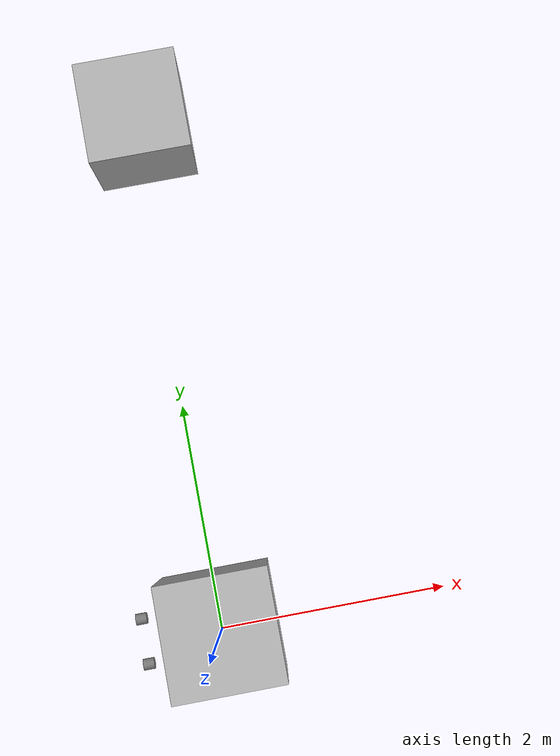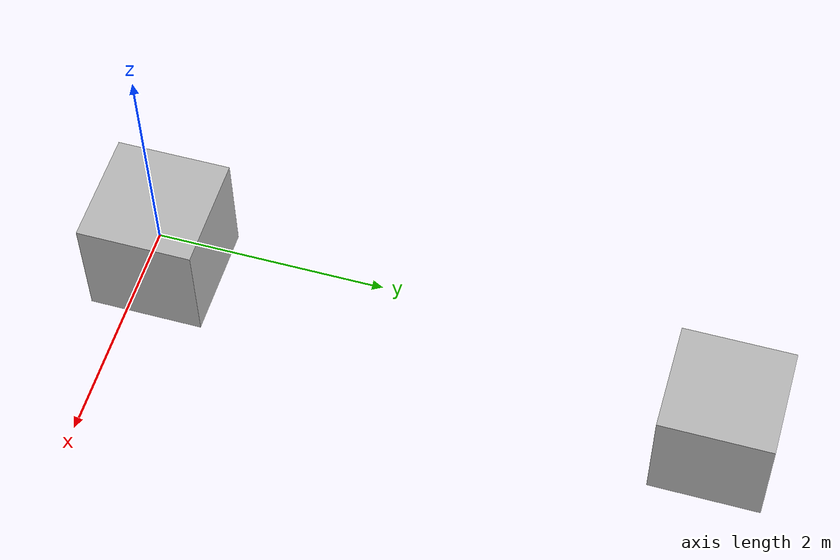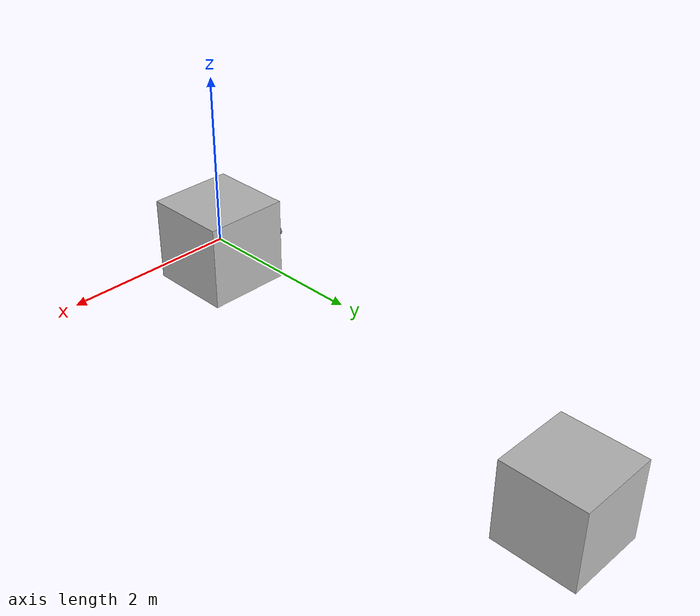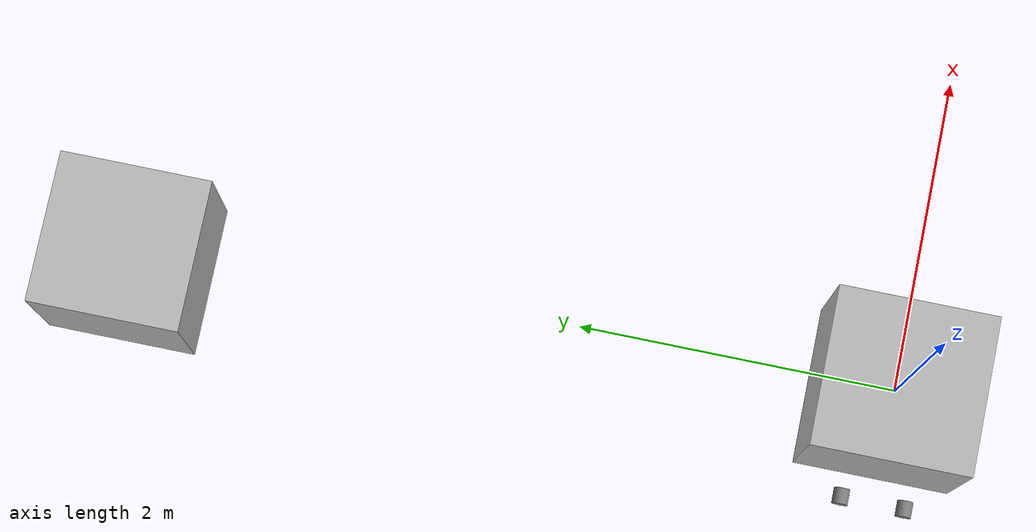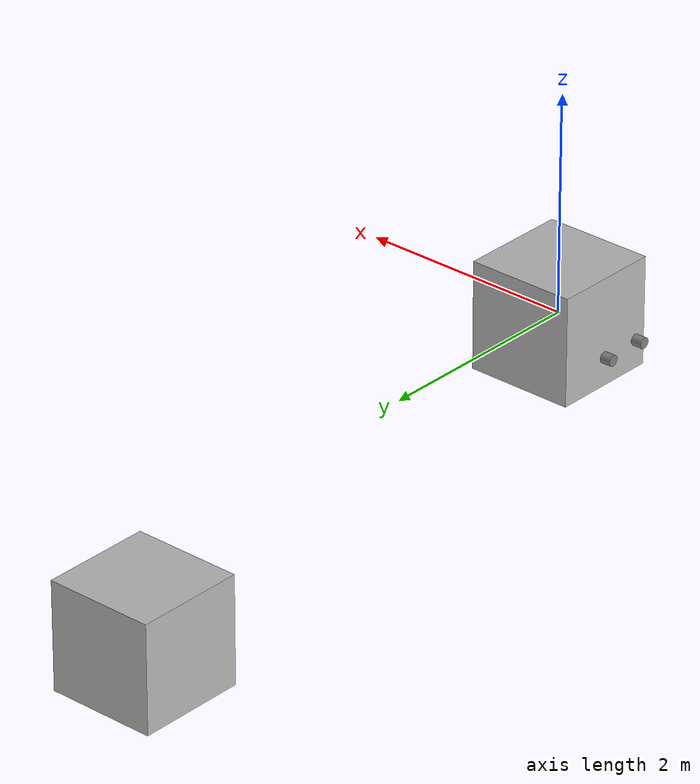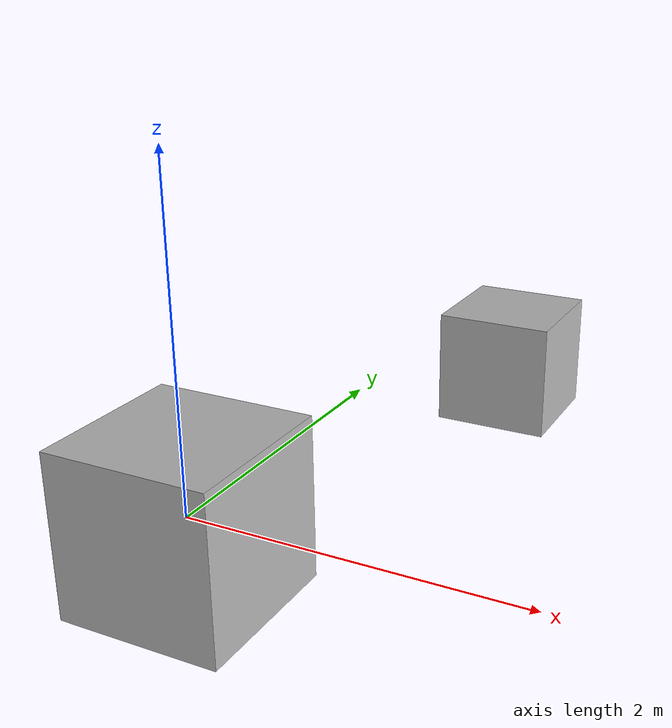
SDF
<sdf version="1.6">
  <world name="buoyant_tethys">
    <scene>
      <ambient>0.0 1.0 1.0</ambient>
      <background>0.0 0.7 0.8</background>
    </scene>

    <physics name="1ms" type="ode">
      <max_step_size>0.001</max_step_size>
      <real_time_factor>1.0</real_time_factor>
    </physics>

    <!-- Add plugins for the world -->
    <plugin filename="gz-sim-physics-system" name="gz::sim::systems::Physics"></plugin>
    <plugin filename="gz-sim-user-commands-system" name="gz::sim::systems::UserCommands"></plugin>
    <plugin filename="gz-sim-scene-broadcaster-system" name="gz::sim::systems::SceneBroadcaster"></plugin>
    <plugin filename="gz-sim-contact-system" name="gz::sim::systems::Contact"></plugin>
    <plugin filename="gz-sim-buoyancy-system" name="gz::sim::systems::Buoyancy">
      <uniform_fluid_density>1000</uniform_fluid_density>
    </plugin>

    <light type="directional" name="sun">
      <cast_shadows>true</cast_shadows>
      <pose>0 0 10 0 0 0</pose>
      <diffuse>1 1 1 1</diffuse>
      <specular>0.5 0.5 0.5 1</specular>
      <attenuation>
        <range>1000</range>
        <constant>0.9</constant>
        <linear>0.01</linear>
        <quadratic>0.001</quadratic>
      </attenuation>
      <direction>-0.5 0.1 -0.9</direction>
    </light>

    <!-- Buoyant box model -->
    <model name="buoyant_box">
      <pose>0 0 0 0 0 0</pose>
      <link name="body">
        <inertial>
          <mass>1000</mass>
          <inertia>
            <ixx>133.3333</ixx>
            <iyy>133.3333</iyy>
            <izz>133.3333</izz>
          </inertia>
        </inertial>
        <visual name="body_visual">
          <geometry>
            <box>
              <size>1 1 1</size>
            </box>
          </geometry>
        </visual>
        <collision name="body_collision">
          <geometry>
            <box>
              <size>1 1 1</size>
            </box>
          </geometry>
        </collision>
      </link>

      <!-- Left thruster -->
      <link name="left_thruster">
        <pose>-0.7 -0.2 -0.1 0 1.57 0</pose>
        <inertial>
          <mass>0</mass>
          <inertia>
            <ixx>0.1</ixx>
            <iyy>0.1</iyy>
            <izz>0.1</izz>
          </inertia>
        </inertial>
        <visual name="left_thruster_visual">
          <geometry>
            <cylinder>
              <radius>0.05</radius>
              <length>0.1</length>
            </cylinder>
          </geometry>
          <material>
            <ambient>0.2 0.2 0.2 1</ambient>
            <diffuse>0.5 0.5 0.5 1</diffuse>
          </material>
        </visual>
      </link>

      <!-- Right thruster -->
      <link name="right_thruster">
        <pose>-0.7 0.2 -0.1 0 1.57 0</pose>
        <inertial>
          <mass>0</mass>
          <inertia>
            <ixx>0.1</ixx>
            <iyy>0.1</iyy>
            <izz>0.1</izz>
          </inertia>
        </inertial>
        <visual name="right_thruster_visual">
          <geometry>
            <cylinder>
              <radius>0.05</radius>
              <length>0.1</length>
            </cylinder>
          </geometry>
          <material>
            <ambient>0.2 0.2 0.2 1</ambient>
            <diffuse>0.5 0.5 0.5 1</diffuse>
          </material>
        </visual>
      </link>

      <!-- Thruster joints -->
      <joint name="left_thruster_joint" type="revolute">
        <parent>body</parent>
        <child>left_thruster</child>
        <axis>
          <xyz>1 0 0</xyz>
        </axis>
      </joint>

      <joint name="right_thruster_joint" type="revolute">
        <parent>body</parent>
        <child>right_thruster</child>
        <axis>
          <xyz>1 0 0</xyz>
        </axis>
      </joint>

      <!-- Buoyancy engine plugin -->
      <plugin filename="gz-sim-buoyancy-engine-system" name="gz::sim::systems::BuoyancyEngine">
        <link_name>body</link_name>
        <namespace>buoyant_box</namespace>
        <min_volume>0.0</min_volume>
        <neutral_volume>0.002</neutral_volume>
        <default_volume>0.002</default_volume>
        <max_volume>0.003</max_volume>
        <max_inflation_rate>0.0003</max_inflation_rate>
      </plugin>

    </model>

    <!-- Buoyant box with surface -->
    <model name="buoyant_box_surface">
      <pose>0 5 -0.8 0 0 0</pose>
      <link name="body">
        <inertial>
          <mass>1000</mass>
          <inertia>
            <ixx>133.3333</ixx>
            <iyy>133.3333</iyy>
            <izz>133.3333</izz>
          </inertia>
        </inertial>
        <visual name="body_visual">
          <geometry>
            <box>
              <size>1 1 1</size>
            </box>
          </geometry>
        </visual>
        <collision name="body_collision">
          <geometry>
            <box>
              <size>1 1 1</size>
            </box>
          </geometry>
        </collision>
      </link>

      <plugin filename="gz-sim-buoyancy-engine-system" name="gz::sim::systems::BuoyancyEngine">
        <link_name>body</link_name>
        <namespace>buoyant_box</namespace>
        <min_volume>0.0</min_volume>
        <neutral_volume>0.002</neutral_volume>
        <default_volume>0.002</default_volume>
        <max_volume>0.003</max_volume>
        <max_inflation_rate>0.0003</max_inflation_rate>
        <surface>0</surface>
      </plugin>
    </model>

  </world>
</sdf>
